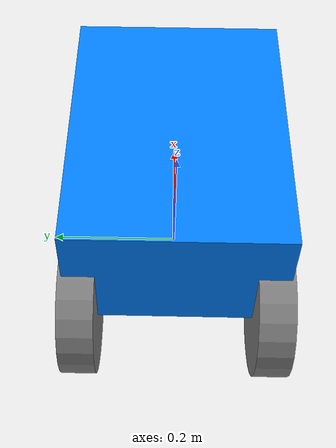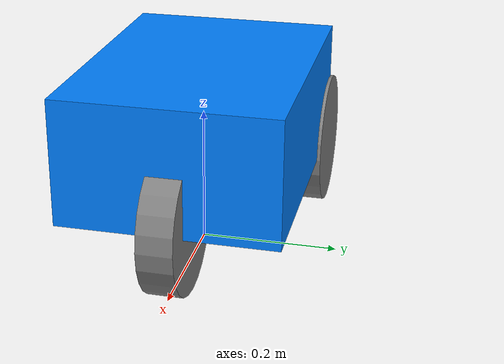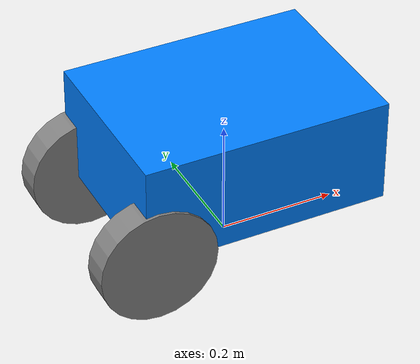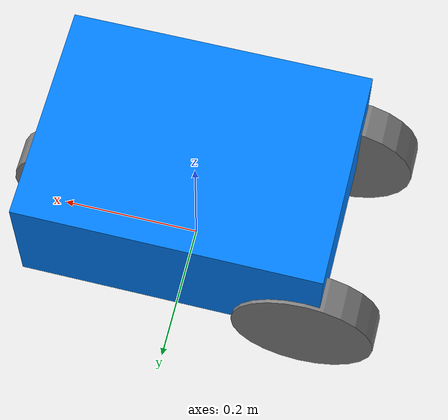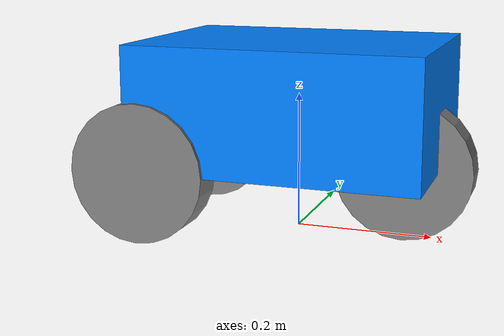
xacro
<?xml version="1.0"?>
<robot xmlns:xacro="http://www.ros.org/wiki/xacro" name="triciclo_robot">

  <!-- Parámetros base -->
  <xacro:property name="base_length" value="0.42"/>
  <xacro:property name="base_width" value="0.31"/>
  <xacro:property name="base_height" value="0.18"/>

  <!-- Parámetros ruedas -->
  <xacro:property name="rear_wheel_radius" value="0.1"/>
  <xacro:property name="rear_wheel_width" value="0.05"/>
  <xacro:property name="front_wheel_radius" value="0.1"/>
  <xacro:property name="front_wheel_width" value="0.05"/>

  <!-- Macros para inercia -->
  <xacro:macro name="box_inertia" params="m w h d">
    <inertial>
      <mass value="${m}"/>
      <origin xyz="0 0 0" rpy="0 0 0"/>
      <inertia
        ixx="${(m/12)*(h*h + d*d)}"
        ixy="0"
        ixz="0"
        iyy="${(m/12)*(w*w + d*d)}"
        iyz="0"
        izz="${(m/12)*(w*w + h*h)}"/>
    </inertial>
  </xacro:macro>

  <xacro:macro name="cylinder_inertia" params="m r h">
    <inertial>
      <mass value="${m}"/>
      <origin xyz="0 0 0" rpy="0 0 0"/>
      <inertia
        ixx="${(m/12)*(3*r*r + h*h)}"
        ixy="0"
        ixz="0"
        iyy="${(m/12)*(3*r*r + h*h)}"
        iyz="0"
        izz="${(m/2)*(r*r)}"/>
    </inertial>
  </xacro:macro>

  <!-- BASE -->
  <link name="base_link">
    <visual>
      <origin xyz="0 0 ${base_height/2 + rear_wheel_radius}" rpy="0 0 0"/>
      <geometry>
        <box size="${base_length} ${base_width} ${base_height}"/>
      </geometry>
      <material name="Blue">
        <color rgba="0.0 0.5 1.0 1.0"/>
      </material>
    </visual>
    <collision>
      <origin xyz="0 0 ${base_height/2 + rear_wheel_radius}" rpy="0 0 0"/>
      <geometry>
        <box size="${base_length} ${base_width} ${base_height}"/>
      </geometry>
    </collision>
    <xacro:box_inertia m="5" w="${base_width}" d="${base_length}" h="${base_height}"/>
  </link>

  <!-- LINK intermedio para la dirección -->
  <link name="front_wheel_steering_link">
    <!-- Agregamos una masa mínima para que Gazebo no falle -->
    <visual>
      <geometry>
        <sphere radius="0.001"/>
      </geometry>
      <material name="invisible"/>
    </visual>
    <collision>
      <geometry>
        <sphere radius="0.001"/>
      </geometry>
    </collision>
    <inertial>
      <mass value="0.001"/>
      <origin xyz="0 0 0" rpy="0 0 0"/>
      <inertia ixx="1e-6" ixy="0" ixz="0" iyy="1e-6" iyz="0" izz="1e-6"/>
    </inertial>
  </link>

  <!-- Junta de dirección -->
  <joint name="steering_joint" type="revolute">
    <parent link="base_link"/>
    <child link="front_wheel_steering_link"/>
    <origin xyz="${base_length/2 - 0.05} 0 ${rear_wheel_radius}" rpy="0 0 0"/>
    <axis xyz="0 0 1"/>
    <limit lower="-0.6" upper="0.6" effort="5" velocity="1"/>
  </joint>

  <!-- RUEDA DELANTERA -->
  <link name="front_wheel_link">
    <visual>
      <origin xyz="0 0 0" rpy="${pi/2} 0 0"/>
      <geometry>
        <cylinder radius="${front_wheel_radius}" length="${front_wheel_width}"/>
      </geometry>
      <material name="Gray">
       <color rgba="0.5 0.5 0.5 1.0"/>
      </material>
    </visual>
    <collision>
      <origin xyz="0 0 0" rpy="${pi/2} 0 0"/>
      <geometry>
        <cylinder radius="${front_wheel_radius}" length="${front_wheel_width}"/>
      </geometry>
    </collision>
    <xacro:cylinder_inertia m="0.2" r="${front_wheel_radius}" h="${front_wheel_width}"/>
  </link>

  <!-- Junta de rotación de la rueda delantera -->
  <joint name="front_wheel_joint" type="continuous">
    <parent link="front_wheel_steering_link"/>
    <child link="front_wheel_link"/>
    <origin xyz="0 0 0" rpy="0 0 0"/>
    <axis xyz="0 1 0"/>
  </joint>

  <!-- RUEDA TRASERA IZQUIERDA -->
  <link name="rear_left_wheel">
    <visual>
      <origin xyz="0 0 0" rpy="${pi/2} 0 0"/>
      <geometry>
        <cylinder radius="${rear_wheel_radius}" length="${rear_wheel_width}"/>
      </geometry>
      <material name="Gray"/>
    </visual>
    <collision>
      <origin xyz="0 0 0" rpy="${pi/2} 0 0"/>
      <geometry>
        <cylinder radius="${rear_wheel_radius}" length="${rear_wheel_width}"/>
      </geometry>
    </collision>
    <xacro:cylinder_inertia m="0.2" r="${rear_wheel_radius}" h="${rear_wheel_width}"/>
  </link>

  <joint name="rear_left_joint" type="continuous">
    <parent link="base_link"/>
    <child link="rear_left_wheel"/>
    <origin xyz="-${base_length/2 - 0.02} ${base_width/2 - 0.02} ${rear_wheel_radius}" rpy="0 0 0"/>
    <axis xyz="0 1 0"/>
  </joint>

  <!-- RUEDA TRASERA DERECHA -->
  <link name="rear_right_wheel">
    <visual>
      <origin xyz="0 0 0" rpy="${pi/2} 0 0"/>
      <geometry>
        <cylinder radius="${rear_wheel_radius}" length="${rear_wheel_width}"/>
      </geometry>
      <material name="Gray"/>
    </visual>
    <collision>
      <origin xyz="0 0 0" rpy="${pi/2} 0 0"/>
      <geometry>
        <cylinder radius="${rear_wheel_radius}" length="${rear_wheel_width}"/>
      </geometry>
    </collision>
    <xacro:cylinder_inertia m="0.2" r="${rear_wheel_radius}" h="${rear_wheel_width}"/>
  </link>

  <joint name="rear_right_joint" type="continuous">
    <parent link="base_link"/>
    <child link="rear_right_wheel"/>
    <origin xyz="-${base_length/2 - 0.02} -${base_width/2 - 0.02} ${rear_wheel_radius}" rpy="0 0 0"/>
    <axis xyz="0 1 0"/>
  </joint>

<!-- ros2_control Plugin -->
<gazebo>
  <plugin filename="libgazebo_ros2_control.so" name="gazebo_ros2_control">
      <robot_param>robot_description</robot_param>
      <robot_param_node>robot_state_publisher</robot_param_node>
      <parameters>$(find triciclo_robot)/config/triciclo_controllers.yaml</parameters>
  </plugin>
</gazebo>

<!-- Transmisiones para control -->
<transmission name="steering_transmission">
  <type>transmission_interface/SimpleTransmission</type>
  <joint name="steering_joint">
    <hardwareInterface>position</hardwareInterface>
  </joint>
  <actuator name="steering_motor">
    <hardwareInterface>position</hardwareInterface>
    <mechanicalReduction>1</mechanicalReduction>
  </actuator>
</transmission>

<transmission name="front_drive_transmission">
  <type>transmission_interface/SimpleTransmission</type>
  <joint name="front_wheel_joint">
    <hardwareInterface>velocity</hardwareInterface>
  </joint>
  <actuator name="front_drive_motor">
    <hardwareInterface>velocity</hardwareInterface>
    <mechanicalReduction>1</mechanicalReduction>
  </actuator>
</transmission>

<ros2_control name="TricicloSystem" type="system">
  <hardware>
    <plugin>gazebo_ros2_control/DefaultRobotHWSim</plugin>
  </hardware>

  <joint name="steering_joint">
    <command_interface name="position"/>
    <state_interface name="position"/>
    <state_interface name="velocity"/>
  </joint>

  <joint name="front_wheel_joint">
    <command_interface name="velocity"/>
    <state_interface name="position"/>
    <state_interface name="velocity"/>
  </joint>
</ros2_control>

</robot>
